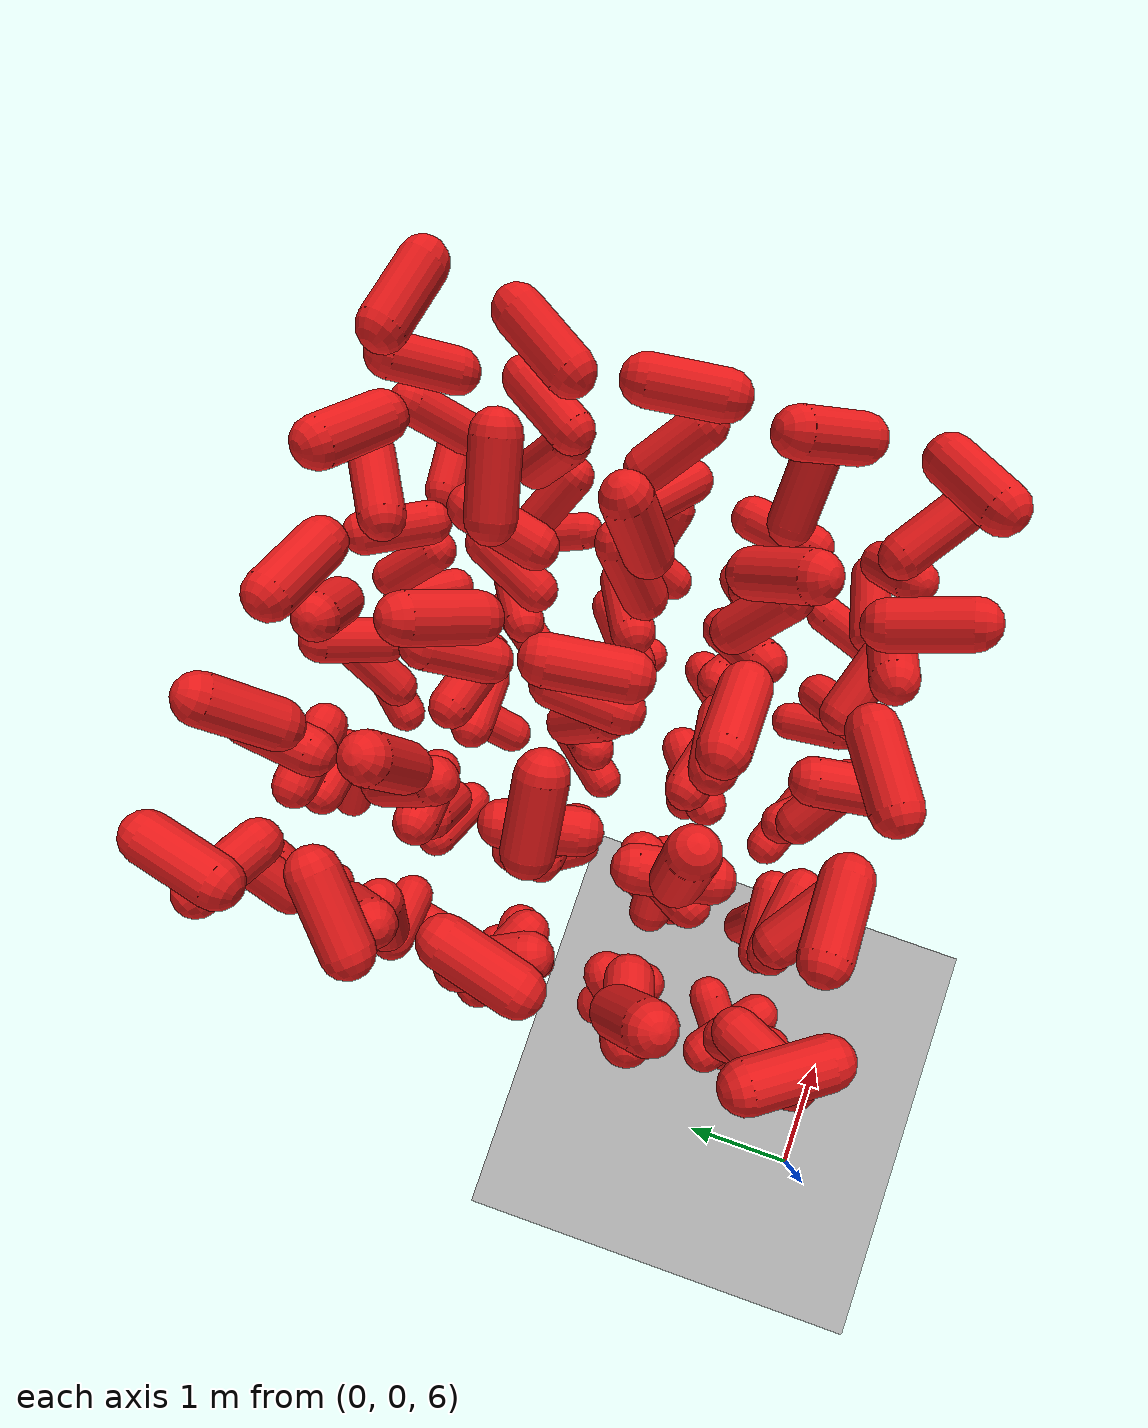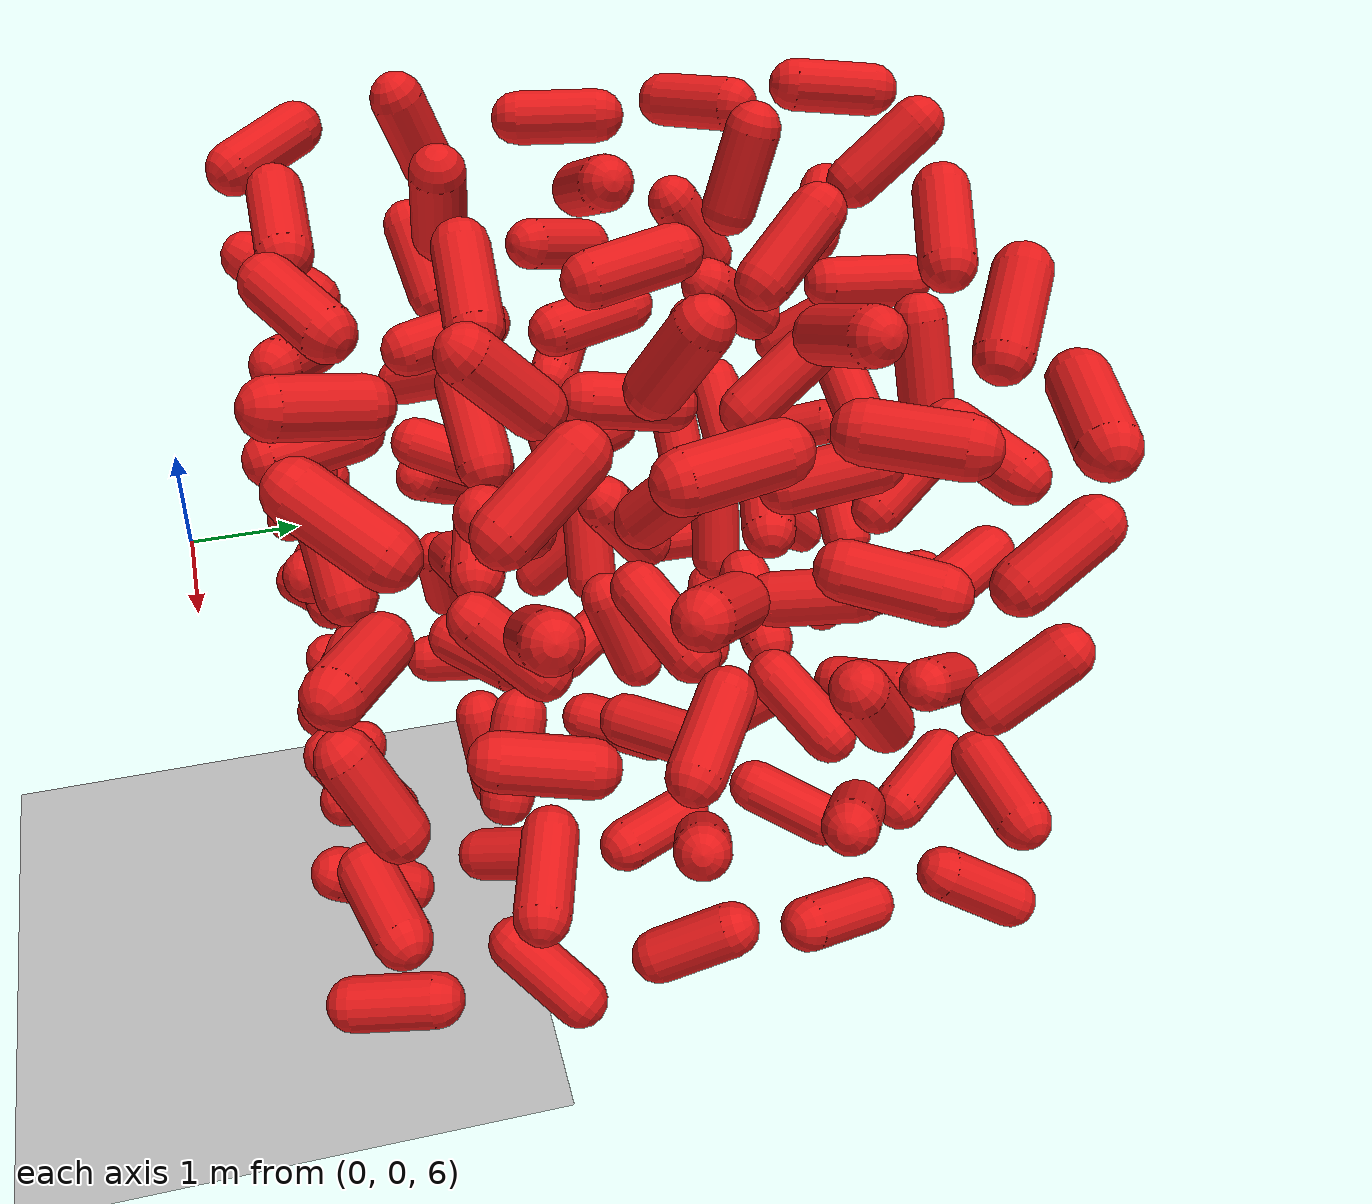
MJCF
<mujoco model="Humanoid and 100 objects">
    <compiler angle="degree"/>

    <option timestep="0.01" iterations="50" solver="PGS" jacobian="sparse" cone="elliptic" tolerance="1e-10"/>

    <size njmax="5000" nconmax="2000" nstack="1000000000"/>

    <default>
        <geom solimp=".9 .9 .01"/>

        <default class="object5">
			<geom type="capsule" material="geom" rgba=".9 .1 .1 1" size="0.200000 0.300000"/>
        </default>
    </default>

    <asset>
        <texture type="skybox" builtin="gradient" width="128" height="128" rgb1=".4 .6 .8" rgb2="0 0 0"/>
        <texture name="texgeom" type="cube" builtin="flat" mark="cross" width="128" height="128"
            rgb1="0.6 0.6 0.6" rgb2="0.6 0.6 0.6" markrgb="1 1 1"/>
        <texture name="texplane" type="2d" builtin="checker" rgb1=".4 .4 .4" rgb2=".6 .6 .6"
            width="512" height="512"/>
        <material name='geom' texture="texgeom" texuniform="true"/>
        <material name='MatPlane' reflectance='0.3' texture="texplane" texrepeat="1 1" texuniform="true"/>
    </asset>

    <visual>
        <quality shadowsize="4096" offsamples="8"/>
        <map znear="0.1" force="0.05"/>
    </visual>

    <statistic extent="4"/>

    <worldbody>
        <light directional="true" diffuse=".8 .8 .8" pos="0 0 10" dir="0 0 -10"/>

        <geom pos="0 0 0" type="plane" size="3 3 .5" rgba=".7 .7 .7 1" material="MatPlane"/>
		<body pos="1.100066 1.100229 6.100445" quat="-0.587479 -0.101494 0.731784 -0.330243"> <freejoint/> <geom class="object5"/> </body>
		<body pos="1.100099 1.100040 7.200566" quat="0.698577 0.307226 0.630699 -0.140787"> <freejoint/> <geom class="object5"/> </body>
		<body pos="1.100089 1.100225 8.300851" quat="0.196474 -0.857098 0.452723 0.147728"> <freejoint/> <geom class="object5"/> </body>
		<body pos="1.100391 1.100862 9.400982" quat="0.796534 0.494539 -0.012028 -0.347591"> <freejoint/> <geom class="object5"/> </body>
		<body pos="1.100477 1.100456 10.500926" quat="-0.643832 -0.645184 -0.411161 -0.012846"> <freejoint/> <geom class="object5"/> </body>
		<body pos="1.100061 2.200223 6.100027" quat="-0.100634 0.674357 0.731489 -0.006222"> <freejoint/> <geom class="object5"/> </body>
		<body pos="1.100906 2.200712 7.200130" quat="-0.894752 -0.256381 -0.344592 0.122247"> <freejoint/> <geom class="object5"/> </body>
		<body pos="1.100110 2.200959 8.300102" quat="-0.182472 -0.728667 -0.438206 0.493685"> <freejoint/> <geom class="object5"/> </body>
		<body pos="1.100685 2.200719 9.400512" quat="0.144593 -0.370259 -0.158825 0.903757"> <freejoint/> <geom class="object5"/> </body>
		<body pos="1.100937 2.200524 10.500743" quat="-0.159752 0.891366 0.418312 0.070436"> <freejoint/> <geom class="object5"/> </body>
		<body pos="1.100997 3.300218 6.100333" quat="0.176737 0.549143 0.748751 -0.326464"> <freejoint/> <geom class="object5"/> </body>
		<body pos="1.100746 3.300109 7.200949" quat="-0.534411 -0.476850 0.429041 0.550403"> <freejoint/> <geom class="object5"/> </body>
		<body pos="1.100061 3.300967 8.300524" quat="0.643914 -0.018465 0.703960 -0.299123"> <freejoint/> <geom class="object5"/> </body>
		<body pos="1.100170 3.300880 9.400448" quat="0.516046 -0.511638 -0.647399 -0.229778"> <freejoint/> <geom class="object5"/> </body>
		<body pos="1.100347 3.300059 10.500244" quat="0.719387 -0.682354 0.119011 -0.052086"> <freejoint/> <geom class="object5"/> </body>
		<body pos="1.100058 4.400109 6.100079" quat="-0.407690 0.449525 0.463507 0.645661"> <freejoint/> <geom class="object5"/> </body>
		<body pos="1.100997 4.400073 7.200468" quat="-0.704441 0.238712 0.311844 -0.591213"> <freejoint/> <geom class="object5"/> </body>
		<body pos="1.100584 4.400919 8.300937" quat="-0.075367 0.802462 0.563035 -0.182662"> <freejoint/> <geom class="object5"/> </body>
		<body pos="1.100879 4.400603 9.400044" quat="-0.249750 0.849907 -0.454577 -0.092966"> <freejoint/> <geom class="object5"/> </body>
		<body pos="1.100959 4.400144 10.500008" quat="0.273476 0.743196 0.220084 -0.569590"> <freejoint/> <geom class="object5"/> </body>
		<body pos="1.100966 5.500630 6.100195" quat="0.313131 -0.605444 -0.707772 -0.185594"> <freejoint/> <geom class="object5"/> </body>
		<body pos="1.100068 5.500769 7.200224" quat="0.786238 -0.536409 0.064711 -0.299847"> <freejoint/> <geom class="object5"/> </body>
		<body pos="1.100498 5.500277 8.300151" quat="-0.433307 -0.887382 0.128876 0.090493"> <freejoint/> <geom class="object5"/> </body>
		<body pos="1.100018 5.500862 9.400412" quat="-0.593006 -0.134445 -0.772532 0.182928"> <freejoint/> <geom class="object5"/> </body>
		<body pos="1.100992 5.500089 10.500593" quat="0.702200 0.589763 -0.335088 0.216361"> <freejoint/> <geom class="object5"/> </body>
		<body pos="2.200131 1.100726 6.100437" quat="0.094490 -0.888148 -0.447375 0.046044"> <freejoint/> <geom class="object5"/> </body>
		<body pos="2.200525 1.100561 7.200301" quat="-0.038165 0.688116 0.021209 0.724286"> <freejoint/> <geom class="object5"/> </body>
		<body pos="2.200088 1.100226 8.300773" quat="-0.710060 0.293617 0.603931 -0.211828"> <freejoint/> <geom class="object5"/> </body>
		<body pos="2.200030 1.100340 9.400542" quat="-0.116522 0.437949 -0.383057 0.804917"> <freejoint/> <geom class="object5"/> </body>
		<body pos="2.200914 1.100950 10.500632" quat="-0.428925 0.515611 0.322084 -0.668155"> <freejoint/> <geom class="object5"/> </body>
		<body pos="2.200407 2.200614 6.100446" quat="0.200200 -0.368172 -0.524731 -0.740963"> <freejoint/> <geom class="object5"/> </body>
		<body pos="2.200009 2.200336 7.200415" quat="0.725791 0.242778 0.445856 0.464218"> <freejoint/> <geom class="object5"/> </body>
		<body pos="2.200772 2.200293 8.300993" quat="0.714935 0.635009 -0.098365 -0.275602"> <freejoint/> <geom class="object5"/> </body>
		<body pos="2.200620 2.200702 9.400135" quat="0.640978 0.655583 0.348265 -0.195111"> <freejoint/> <geom class="object5"/> </body>
		<body pos="2.200715 2.200782 10.500827" quat="0.095241 -0.798884 -0.583590 0.110165"> <freejoint/> <geom class="object5"/> </body>
		<body pos="2.200650 3.300585 6.100686" quat="0.468395 0.155051 0.739378 -0.458132"> <freejoint/> <geom class="object5"/> </body>
		<body pos="2.200860 3.300416 7.200391" quat="-0.116921 0.308631 0.012572 -0.943885"> <freejoint/> <geom class="object5"/> </body>
		<body pos="2.200654 3.300460 8.300269" quat="0.609220 -0.650063 -0.452088 0.043417"> <freejoint/> <geom class="object5"/> </body>
		<body pos="2.200850 3.300169 9.400085" quat="-0.678535 -0.688689 -0.245171 0.072031"> <freejoint/> <geom class="object5"/> </body>
		<body pos="2.200056 3.300793 10.500497" quat="-0.480938 0.438136 -0.220246 0.726793"> <freejoint/> <geom class="object5"/> </body>
		<body pos="2.200056 4.400192 6.100897" quat="0.111738 -0.488293 0.102282 0.859432"> <freejoint/> <geom class="object5"/> </body>
		<body pos="2.200239 4.400013 7.200438" quat="-0.941656 0.092666 0.209241 -0.246809"> <freejoint/> <geom class="object5"/> </body>
		<body pos="2.200845 4.400739 8.300559" quat="-0.366893 -0.545447 -0.684168 -0.315898"> <freejoint/> <geom class="object5"/> </body>
		<body pos="2.200396 4.400571 9.400985" quat="-0.406362 0.896729 0.172759 -0.030031"> <freejoint/> <geom class="object5"/> </body>
		<body pos="2.200973 4.400952 10.500441" quat="-0.335698 -0.006369 0.151742 0.929646"> <freejoint/> <geom class="object5"/> </body>
		<body pos="2.200967 5.500983 6.100439" quat="0.963103 0.037546 0.237020 -0.121836"> <freejoint/> <geom class="object5"/> </body>
		<body pos="2.200473 5.500113 7.200390" quat="-0.204243 -0.799145 -0.368587 -0.428715"> <freejoint/> <geom class="object5"/> </body>
		<body pos="2.200924 5.500652 8.300061" quat="-0.553409 0.486310 0.467508 -0.488547"> <freejoint/> <geom class="object5"/> </body>
		<body pos="2.200450 5.500452 9.400616" quat="-0.657969 0.699315 0.161687 0.227800"> <freejoint/> <geom class="object5"/> </body>
		<body pos="2.200154 5.500431 10.500326" quat="0.416641 0.905519 -0.050901 0.062088"> <freejoint/> <geom class="object5"/> </body>
		<body pos="3.300184 1.100969 6.100556" quat="0.698746 -0.160767 -0.691196 -0.090314"> <freejoint/> <geom class="object5"/> </body>
		<body pos="3.300755 1.100169 7.200838" quat="-0.437877 -0.413465 -0.785457 0.142718"> <freejoint/> <geom class="object5"/> </body>
		<body pos="3.300244 1.100875 8.300937" quat="0.838779 0.362329 0.354279 0.199132"> <freejoint/> <geom class="object5"/> </body>
		<body pos="3.300450 1.100448 9.400726" quat="-0.448841 -0.388725 -0.626533 0.504867"> <freejoint/> <geom class="object5"/> </body>
		<body pos="3.300259 1.100191 10.500838" quat="-0.469185 0.230190 0.599366 -0.606332"> <freejoint/> <geom class="object5"/> </body>
		<body pos="3.300542 2.200644 6.100742" quat="0.146297 0.664845 0.701988 0.209265"> <freejoint/> <geom class="object5"/> </body>
		<body pos="3.300907 2.200698 7.200021" quat="-0.489023 -0.081885 -0.688462 -0.529312"> <freejoint/> <geom class="object5"/> </body>
		<body pos="3.300695 2.200594 8.300499" quat="0.603267 -0.504335 -0.394633 0.475374"> <freejoint/> <geom class="object5"/> </body>
		<body pos="3.300034 2.200445 9.400390" quat="0.767374 -0.193599 -0.419887 0.444242"> <freejoint/> <geom class="object5"/> </body>
		<body pos="3.300030 2.200358 10.500447" quat="0.480132 -0.302724 0.797963 -0.202696"> <freejoint/> <geom class="object5"/> </body>
		<body pos="3.300013 3.300444 6.100615" quat="-0.657385 -0.439427 0.588936 -0.167045"> <freejoint/> <geom class="object5"/> </body>
		<body pos="3.300215 3.300598 7.200631" quat="0.695800 0.252296 -0.016364 -0.672266"> <freejoint/> <geom class="object5"/> </body>
		<body pos="3.300131 3.300082 8.300914" quat="0.529324 0.110409 0.277461 -0.794129"> <freejoint/> <geom class="object5"/> </body>
		<body pos="3.300897 3.300561 9.400510" quat="-0.496714 0.555938 -0.527670 -0.407152"> <freejoint/> <geom class="object5"/> </body>
		<body pos="3.300608 3.300091 10.500193" quat="-0.632522 0.502942 0.440148 0.391452"> <freejoint/> <geom class="object5"/> </body>
		<body pos="3.300467 4.400693 6.100255" quat="0.438493 0.827378 0.293908 -0.191799"> <freejoint/> <geom class="object5"/> </body>
		<body pos="3.300462 4.400019 7.200059" quat="-0.664455 0.305430 0.450068 -0.512495"> <freejoint/> <geom class="object5"/> </body>
		<body pos="3.300052 4.400565 8.300589" quat="0.560543 -0.530842 -0.344489 0.534159"> <freejoint/> <geom class="object5"/> </body>
		<body pos="3.300987 4.400656 9.400427" quat="0.598265 -0.217828 -0.409606 -0.653339"> <freejoint/> <geom class="object5"/> </body>
		<body pos="3.300995 4.400322 10.500613" quat="-0.845469 0.459407 0.114184 -0.247163"> <freejoint/> <geom class="object5"/> </body>
		<body pos="3.300120 5.500854 6.100421" quat="-0.647899 0.103089 -0.570824 -0.493720"> <freejoint/> <geom class="object5"/> </body>
		<body pos="3.300526 5.500783 7.200747" quat="0.655349 -0.451375 -0.166679 -0.582234"> <freejoint/> <geom class="object5"/> </body>
		<body pos="3.300229 5.500368 8.300238" quat="0.238338 0.094564 -0.508596 -0.821939"> <freejoint/> <geom class="object5"/> </body>
		<body pos="3.300440 5.500072 9.400450" quat="0.210461 -0.548656 0.799695 -0.123171"> <freejoint/> <geom class="object5"/> </body>
		<body pos="3.300889 5.500722 10.500996" quat="0.690234 -0.407376 -0.351290 0.483960"> <freejoint/> <geom class="object5"/> </body>
		<body pos="4.400688 1.100137 6.100289" quat="-0.641937 -0.357058 -0.334207 0.590536"> <freejoint/> <geom class="object5"/> </body>
		<body pos="4.400045 1.100820 7.200804" quat="-0.470912 -0.355200 -0.172839 0.788797"> <freejoint/> <geom class="object5"/> </body>
		<body pos="4.400659 1.100162 8.300833" quat="0.542647 -0.543400 -0.576822 0.278436"> <freejoint/> <geom class="object5"/> </body>
		<body pos="4.400056 1.100381 9.400278" quat="-0.061343 0.912761 0.006839 0.403804"> <freejoint/> <geom class="object5"/> </body>
		<body pos="4.400788 1.100138 10.500317" quat="0.585719 0.308860 0.504121 -0.554437"> <freejoint/> <geom class="object5"/> </body>
		<body pos="4.400326 2.200197 6.100460" quat="-0.530629 -0.642236 0.549694 -0.061664"> <freejoint/> <geom class="object5"/> </body>
		<body pos="4.400958 2.200907 7.200332" quat="-0.061127 0.752902 -0.549996 0.356240"> <freejoint/> <geom class="object5"/> </body>
		<body pos="4.400315 2.200721 8.300374" quat="0.452563 -0.831648 0.308224 -0.092450"> <freejoint/> <geom class="object5"/> </body>
		<body pos="4.400524 2.200826 9.400982" quat="-0.037063 0.671055 -0.630116 -0.388929"> <freejoint/> <geom class="object5"/> </body>
		<body pos="4.400322 2.200662 10.500662" quat="0.268696 -0.720169 -0.589370 -0.248600"> <freejoint/> <geom class="object5"/> </body>
		<body pos="4.400957 3.300995 6.100263" quat="0.360175 0.557198 -0.386826 0.640445"> <freejoint/> <geom class="object5"/> </body>
		<body pos="4.400787 3.300529 7.200666" quat="-0.620486 -0.584722 0.517792 0.070639"> <freejoint/> <geom class="object5"/> </body>
		<body pos="4.400864 3.300141 8.300077" quat="-0.577026 -0.527606 0.143189 0.606770"> <freejoint/> <geom class="object5"/> </body>
		<body pos="4.400041 3.300205 9.400532" quat="0.057803 0.665337 0.671915 -0.320181"> <freejoint/> <geom class="object5"/> </body>
		<body pos="4.400305 3.300313 10.500634" quat="-0.462938 -0.018598 -0.246184 -0.851314"> <freejoint/> <geom class="object5"/> </body>
		<body pos="4.400400 4.400615 6.100656" quat="-0.627188 0.613455 -0.479902 -0.001606"> <freejoint/> <geom class="object5"/> </body>
		<body pos="4.400142 4.400476 7.200968" quat="-0.797457 -0.130306 0.526432 -0.264485"> <freejoint/> <geom class="object5"/> </body>
		<body pos="4.400329 4.400839 8.300528" quat="0.592894 0.606218 -0.500023 0.175934"> <freejoint/> <geom class="object5"/> </body>
		<body pos="4.400842 4.400813 9.400474" quat="-0.427052 -0.635974 -0.471919 0.436413"> <freejoint/> <geom class="object5"/> </body>
		<body pos="4.400343 4.400164 10.500451" quat="-0.487805 0.017075 0.864343 -0.121104"> <freejoint/> <geom class="object5"/> </body>
		<body pos="4.400826 5.500021 6.100046" quat="0.301241 0.682906 -0.332970 0.576216"> <freejoint/> <geom class="object5"/> </body>
		<body pos="4.400251 5.500355 7.200950" quat="-0.026196 -0.505709 0.717606 0.478136"> <freejoint/> <geom class="object5"/> </body>
		<body pos="4.400630 5.500096 8.300796" quat="0.522578 -0.191407 -0.661787 -0.502308"> <freejoint/> <geom class="object5"/> </body>
		<body pos="4.400374 5.500342 9.400247" quat="-0.319687 -0.380198 -0.656948 -0.567159"> <freejoint/> <geom class="object5"/> </body>
		<body pos="4.400086 5.500939 10.500600" quat="0.451683 0.726960 0.471656 0.212256"> <freejoint/> <geom class="object5"/> </body>
		<body pos="5.500493 1.100272 6.100650" quat="-0.158630 -0.387940 -0.657403 0.626228"> <freejoint/> <geom class="object5"/> </body>
		<body pos="5.500616 1.100778 7.200454" quat="-0.102713 0.632455 0.269494 -0.718905"> <freejoint/> <geom class="object5"/> </body>
		<body pos="5.500679 1.100999 8.300155" quat="0.273694 -0.138761 -0.286450 0.907625"> <freejoint/> <geom class="object5"/> </body>
		<body pos="5.500499 1.100789 9.400368" quat="0.584490 -0.649707 -0.421818 0.241501"> <freejoint/> <geom class="object5"/> </body>
		<body pos="5.500230 1.100499 10.500604" quat="-0.843273 -0.406024 0.350846 -0.030686"> <freejoint/> <geom class="object5"/> </body>
		<body pos="5.500527 2.200948 6.100625" quat="0.550793 0.543290 0.026306 -0.633064"> <freejoint/> <geom class="object5"/> </body>
		<body pos="5.500264 2.200904 7.200353" quat="-0.306793 0.611480 0.049981 -0.727649"> <freejoint/> <geom class="object5"/> </body>
		<body pos="5.500997 2.200158 8.300339" quat="-0.385253 0.557293 0.510009 0.529995"> <freejoint/> <geom class="object5"/> </body>
		<body pos="5.500405 2.200253 9.400882" quat="-0.836678 -0.166798 -0.389263 -0.347309"> <freejoint/> <geom class="object5"/> </body>
		<body pos="5.500192 2.200259 10.500954" quat="-0.165236 -0.620875 0.598062 -0.479096"> <freejoint/> <geom class="object5"/> </body>
		<body pos="5.500300 3.300045 6.100575" quat="-0.296142 0.264033 0.423315 0.814488"> <freejoint/> <geom class="object5"/> </body>
		<body pos="5.500167 3.300017 7.200988" quat="0.620431 -0.191166 0.354143 -0.673129"> <freejoint/> <geom class="object5"/> </body>
		<body pos="5.500871 3.300736 8.300687" quat="0.454156 0.786837 0.217368 0.356905"> <freejoint/> <geom class="object5"/> </body>
		<body pos="5.500905 3.300043 9.400308" quat="0.459361 -0.138220 0.485576 -0.730821"> <freejoint/> <geom class="object5"/> </body>
		<body pos="5.500997 3.300550 10.500733" quat="0.011235 0.122572 -0.715705 0.687471"> <freejoint/> <geom class="object5"/> </body>
		<body pos="5.500661 4.400213 6.100671" quat="0.557424 -0.798973 0.041763 0.221758"> <freejoint/> <geom class="object5"/> </body>
		<body pos="5.500735 4.400575 7.200122" quat="-0.570541 0.153083 -0.437205 0.678160"> <freejoint/> <geom class="object5"/> </body>
		<body pos="5.500953 4.400993 8.300759" quat="0.086743 -0.646625 0.711860 0.260014"> <freejoint/> <geom class="object5"/> </body>
		<body pos="5.500840 4.400973 9.400173" quat="0.725835 0.579535 -0.370354 0.011844"> <freejoint/> <geom class="object5"/> </body>
		<body pos="5.500676 4.400247 10.500706" quat="-0.626634 -0.716186 0.064815 0.300343"> <freejoint/> <geom class="object5"/> </body>
		<body pos="5.500696 5.500090 6.100337" quat="0.508925 0.175633 -0.479137 0.693236"> <freejoint/> <geom class="object5"/> </body>
		<body pos="5.500161 5.500332 7.200000" quat="0.685088 -0.010584 0.725126 0.068809"> <freejoint/> <geom class="object5"/> </body>
		<body pos="5.500653 5.500284 8.300859" quat="-0.799151 0.401918 -0.182029 -0.408272"> <freejoint/> <geom class="object5"/> </body>
		<body pos="5.500179 5.500754 9.400409" quat="0.529356 0.820165 0.216077 0.020551"> <freejoint/> <geom class="object5"/> </body>
		<body pos="5.500640 5.500245 10.500092" quat="0.565353 -0.512995 -0.444727 0.468434"> <freejoint/> <geom class="object5"/> </body>

    </worldbody>
</mujoco>
